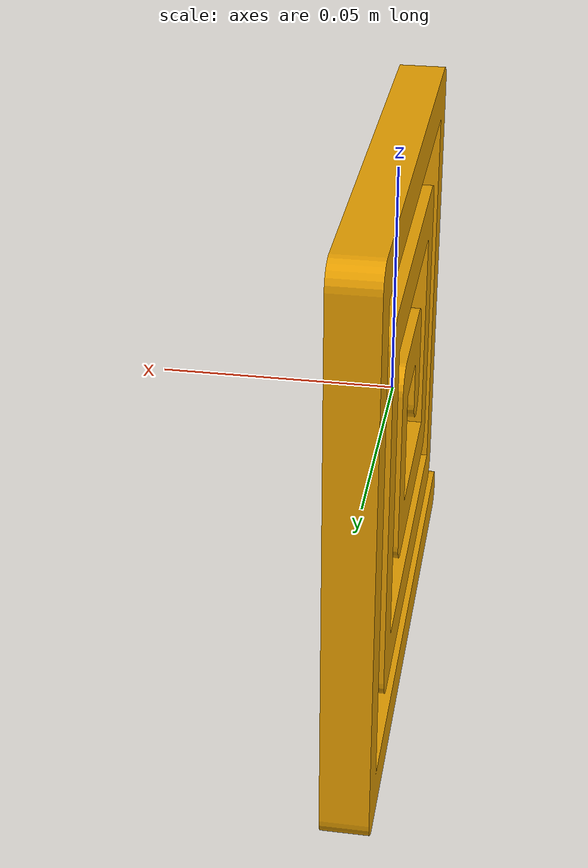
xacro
<?xml version="1.0"?>

<robot xmlns:xacro="http://www.ros.org/wiki/xacro" name="rfid_tag">

<xacro:arg name="ID" default="1"/>
<xacro:arg name="frequency" default="860.0"/>
<xacro:arg name="power" default="0.001"/>
<xacro:arg name="gain" default="1"/>

<xacro:arg name="tf_prefix" default=""/>

<!-- RFID reader -->
<link name="$(arg tf_prefix)/rfid_tag_$(arg ID)_link">
  <collision name="rfid_tag_$(arg ID)_collision">
    <origin xyz="0 0 0" rpy="0 0 0"/>
    <geometry>
      <mesh scale="0.005 0.005 0.005"  filename="package://gazebo_rfid_node/models/tag/tag.stl"/>
    </geometry>
  </collision>

  <visual>
    <origin xyz="0 0 0" rpy="0 0 0"/>
    <geometry>
      <mesh  scale="0.005 0.005 0.005" filename="package://gazebo_rfid_node/models/tag/tag.stl"/>
    </geometry>
  </visual>

  <inertial>
    <mass value="1e-5" />
    <origin xyz="0 0 0" rpy="0 0 0"/>
    <inertia ixx="1e-1" ixy="0" ixz="0" iyy="1e-1" iyz="0" izz="1e-1" />
  </inertial>
</link>

<gazebo reference="$(arg tf_prefix)/rfid_tag_$(arg ID)_link">
  <turnGravityOff>true</turnGravityOff>
  <is_static>true</is_static>
  <gravity>0</gravity>
  <sensor name="rfid_tag_$(arg ID)_sensor" type="wireless_transmitter">
    <pose>0 0 0 0 0 0</pose>
    <visualize>true</visualize>
    <update_rate>40</update_rate>
    <always_on>1</always_on>
    <transceiver>
      <essid>$(arg ID)</essid>
      <frequency>$(arg frequency)</frequency>
      <power>$(arg power)</power>
      <gain>$(arg gain)</gain>
    </transceiver>
  </sensor>
</gazebo>

</robot>
